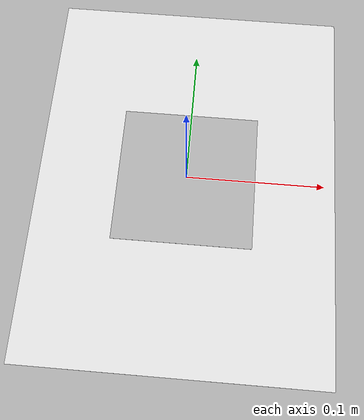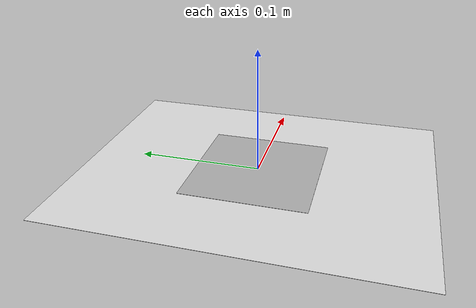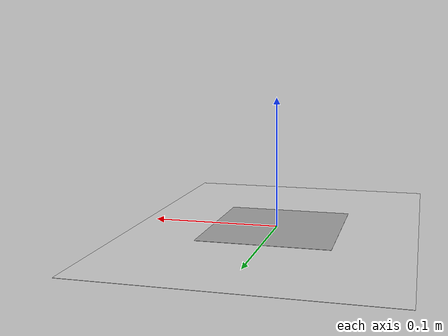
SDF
<?xml version="1.0" ?>
<sdf version="1.5">
    <model name='paper_letter_size'>
    <pose>0.0 0.0 0.0 0.0 0.0 0.0</pose>
      <link name='link'>
        <self_collide>0</self_collide>
        <enable_wind>0</enable_wind>
        <kinematic>0</kinematic>
        <pose>0 0 0 0 -0 0</pose>
        <gravity>1</gravity>
        <visual name='visual'>
          <geometry>
            <box>
              <size>0.2159 0.2794 0.0002</size> <!-- reducing thickness from 0.001 to prevent robot from bouncing after driving on paper-->
            </box>
          </geometry>
          <material>
            <script>
              <name>Gazebo/White</name>
              <uri>file://media/materials/scripts/gazebo.material</uri>
            </script>
            <shader type='pixel'>
              <normal_map>__default__</normal_map>
            </shader>
            <ambient>1 1 1 1</ambient>
            <diffuse>1 1 1 1</diffuse>
            <specular>0 0 0 1</specular>
            <emissive>0 0 0 1</emissive>
          </material>
          <pose>0 0 0 0 -0 0</pose>
          <transparency>0</transparency>
          <cast_shadows>1</cast_shadows>
        </visual>
      </link>
      <static>1</static>

      <include>
        <name>aruco</name>
        <static>true</static>       <!--no interaction-->
        <uri>model://aruco_marker</uri>
        <pose>0.0 0.0 0.0002 1.57 -1.57 -1.57</pose> <!-- changed to match new paper reduced thickness that is used for prevent robot from bouncing on it-->
      </include>

      <allow_auto_disable>1</allow_auto_disable>
    </model>
</sdf>

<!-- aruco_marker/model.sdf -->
<sdf version="1.6">
  <model name="aruco_marker">
    <static>true</static>       <!--no interaction-->
    <link name="link">
      <inertial>
        <pose>0 0 0 0 0 0</pose>
        <mass>0.001</mass>
        <inertia>
          <ixx>3.7499999999999997e-06</ixx>
          <ixy>0.0</ixy>
          <ixz>0.0</ixz>
          <iyy>1.8750008333333333e-06</iyy>
          <iyz>0.0</iyz>
          <izz>1.8750008333333333e-06</izz>
        </inertia>
      </inertial>
      <visual name="front_visual">
        <pose>0.00005 0 0 0 0 0</pose>
        <geometry>
          <box>
            <size>0.00005 0.10 0.10</size> <!-- reducing from 0.0001 to 0.00005 to help prevent the robot from bouncing after driving on it -->
          </box>
        </geometry>
        <material>
          <script>
            <uri>model://aruco_marker/materials/scripts</uri>
            <uri>model://aruco_marker/materials/textures</uri>
            <name>Marker</name>
          </script>
        </material>
      </visual>
      <!-- Hide the marker from the back -->
      <visual name="rear_visual">
        <pose>-0.00005 0 0 0 0 0</pose>
        <geometry>
          <box>
            <size>0.0001 0.10 0.10</size>
          </box>
        </geometry>
      </visual>
    </link>
  </model>
</sdf>
